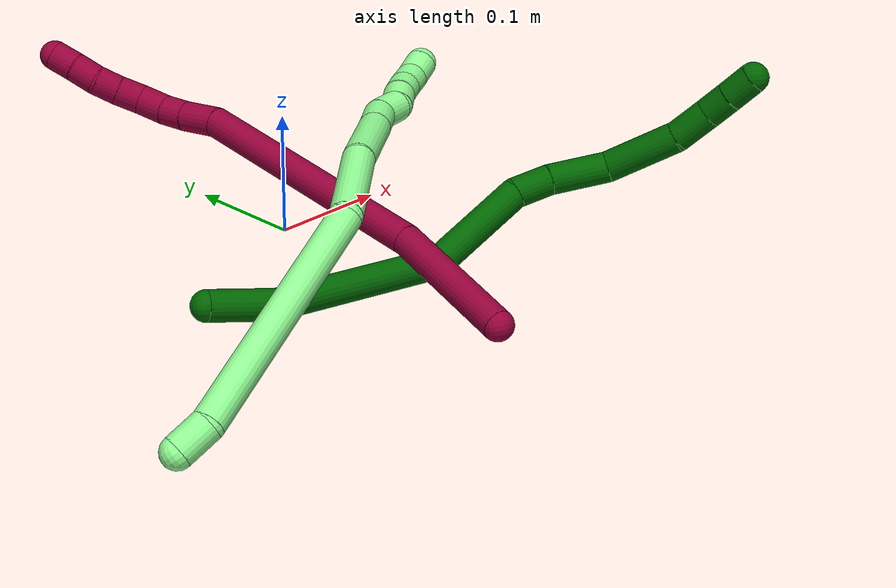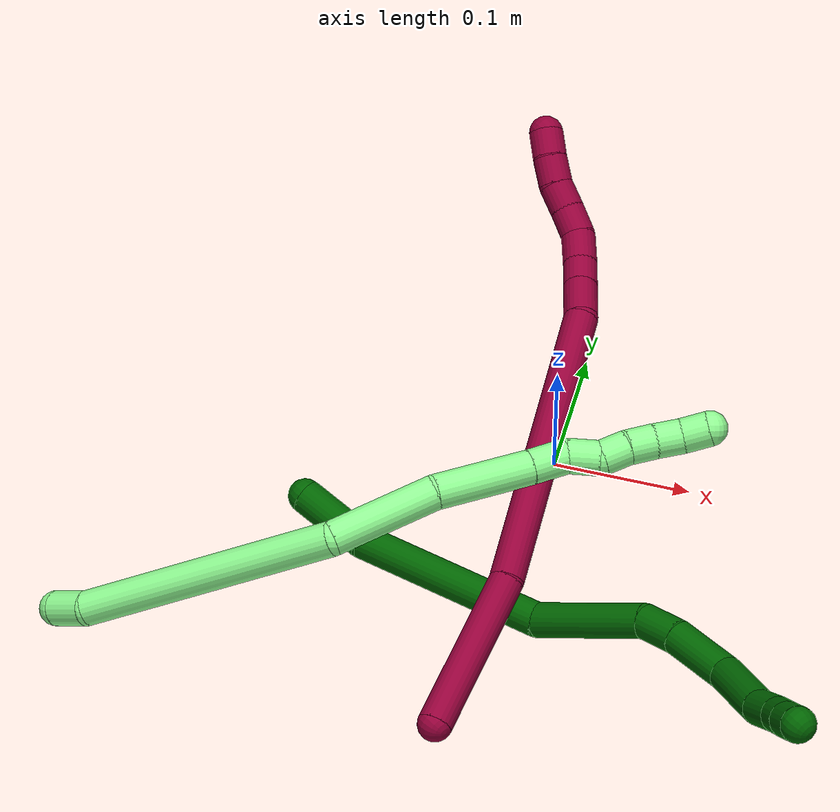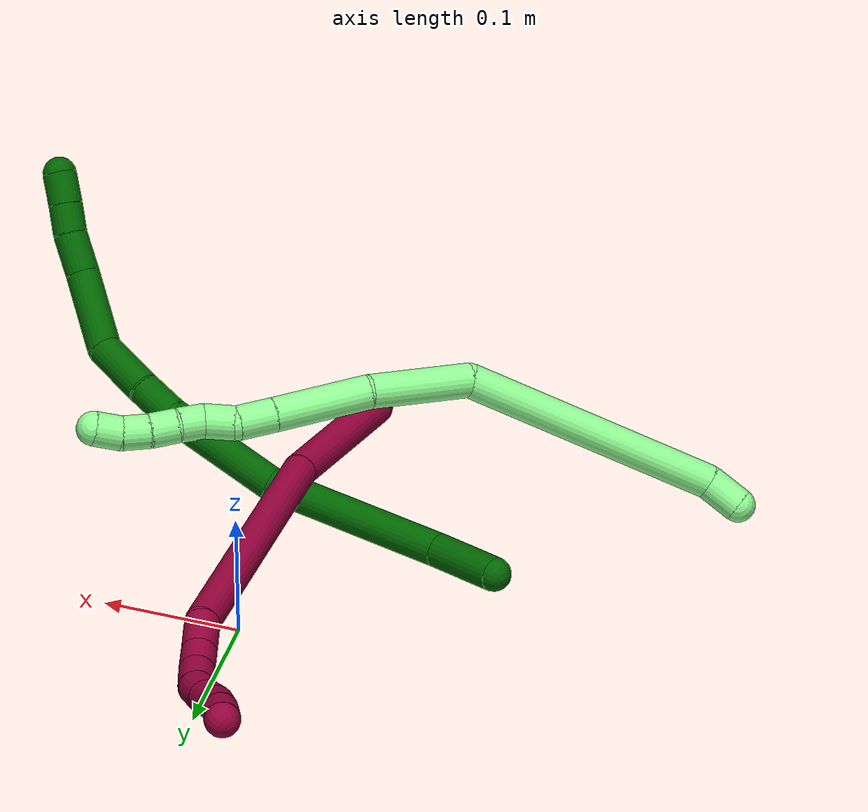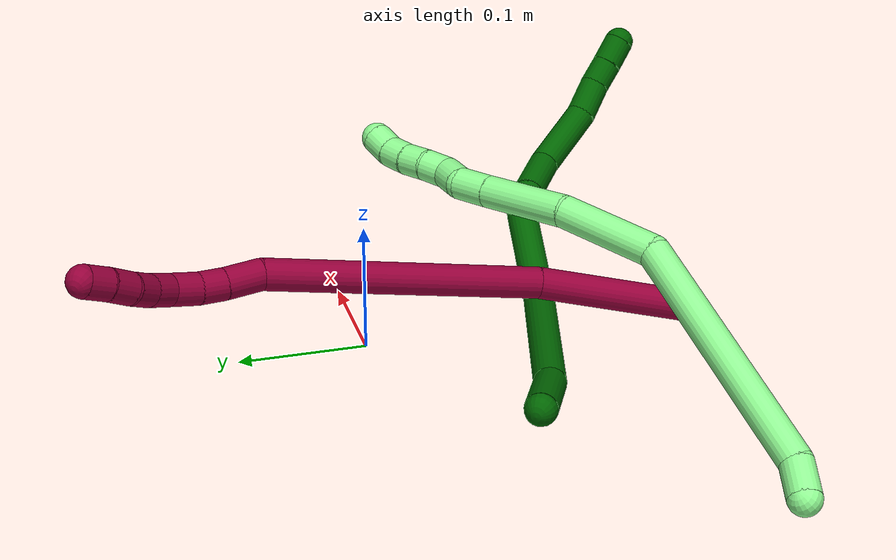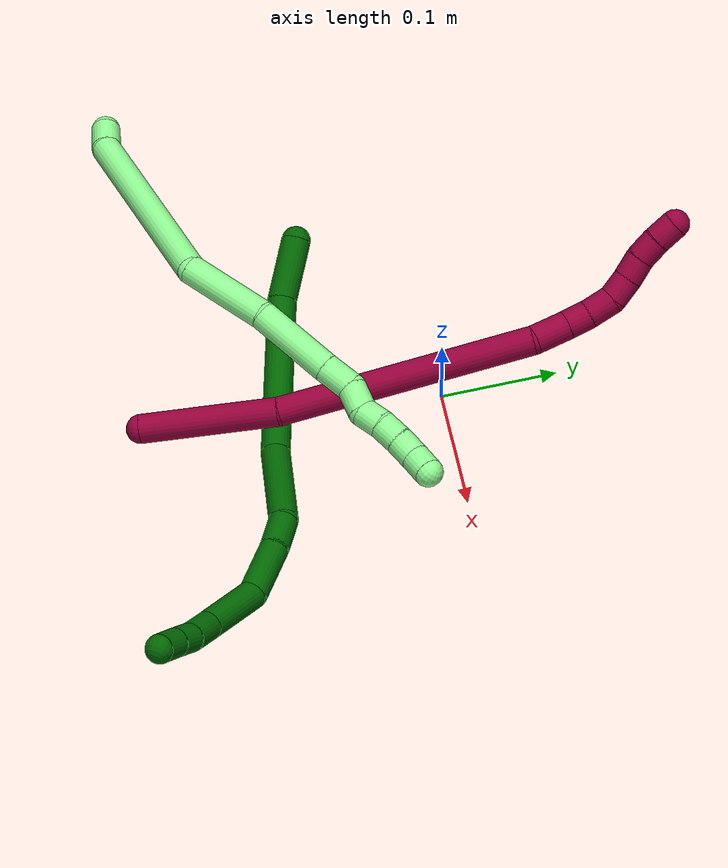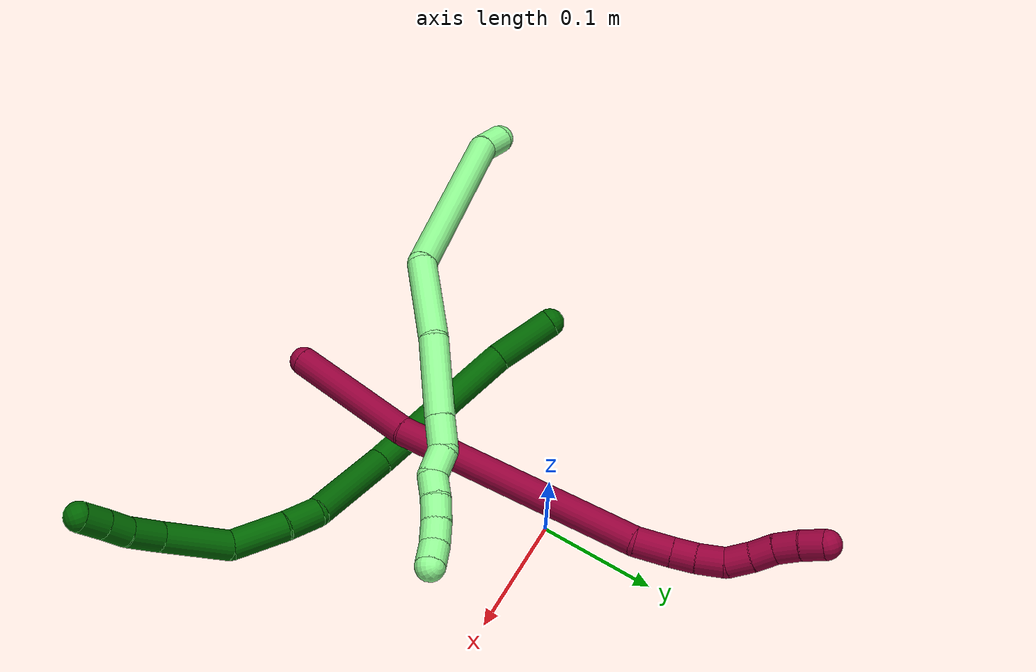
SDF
<sdf version="1.7">
 <world name="default">
  <model name="6">
   <static>0</static>
   <link name="6">
    <collision name="collision-cylinder-e_1_1_4">
     <pose>0.000541 -0.006831 0.026379 0.253406 0.019837 0.002527</pose>
     <geometry><cylinder><radius>0.0125</radius><length>0.054508</length></cylinder></geometry>
     <surface>
      <friction><ode><mu>1.16</mu><mu2>1.16</mu2><slip1>0</slip1><slip2>0</slip2></ode></friction>
      <contact><ode><kp>1e+06</kp><kd>1</kd><max_vel>0</max_vel><min_depth>0.001</min_depth></ode></contact>
     </surface>
    </collision>
    <visual name="visual-cylinder-e_1_1_4">
     <pose>0.000541 -0.006831 0.026379 0.253406 0.019837 0.002527</pose>
     <geometry><cylinder><radius>0.0125</radius><length>0.054508</length></cylinder></geometry>
     <material><ambient>0 0.392157 0.003922 1</ambient></material>
    </visual>
    <collision name="collision-cylinder-e_2_4_5">
     <pose>0.019101 -0.031866 0.118741 0.269172 0.257416 0.035045</pose>
     <geometry><cylinder><radius>0.0125</radius><length>0.141562</length></cylinder></geometry>
     <surface>
      <friction><ode><mu>1.16</mu><mu2>1.16</mu2><slip1>0</slip1><slip2>0</slip2></ode></friction>
      <contact><ode><kp>1e+06</kp><kd>1</kd><max_vel>0</max_vel><min_depth>0.001</min_depth></ode></contact>
     </surface>
    </collision>
    <visual name="visual-cylinder-e_2_4_5">
     <pose>0.019101 -0.031866 0.118741 0.269172 0.257416 0.035045</pose>
     <geometry><cylinder><radius>0.0125</radius><length>0.141562</length></cylinder></geometry>
     <material><ambient>0 0.392157 0.003922 1</ambient></material>
    </visual>
    <collision name="collision-cylinder-e_3_5_6">
     <pose>0.063339 -0.048951 0.219802 -0.03184 0.641637 -0.010581</pose>
     <geometry><cylinder><radius>0.0125</radius><length>0.087613</length></cylinder></geometry>
     <surface>
      <friction><ode><mu>1.16</mu><mu2>1.16</mu2><slip1>0</slip1><slip2>0</slip2></ode></friction>
      <contact><ode><kp>1e+06</kp><kd>1</kd><max_vel>0</max_vel><min_depth>0.001</min_depth></ode></contact>
     </surface>
    </collision>
    <visual name="visual-cylinder-e_3_5_6">
     <pose>0.063339 -0.048951 0.219802 -0.03184 0.641637 -0.010581</pose>
     <geometry><cylinder><radius>0.0125</radius><length>0.087613</length></cylinder></geometry>
     <material><ambient>0 0.392157 0.003922 1</ambient></material>
    </visual>
    <collision name="collision-cylinder-e_4_6_7">
     <pose>0.093473 -0.046628 0.269361 -0.08305 0.263188 -0.010999</pose>
     <geometry><cylinder><radius>0.0125</radius><length>0.030104</length></cylinder></geometry>
     <surface>
      <friction><ode><mu>1.16</mu><mu2>1.16</mu2><slip1>0</slip1><slip2>0</slip2></ode></friction>
      <contact><ode><kp>1e+06</kp><kd>1</kd><max_vel>0</max_vel><min_depth>0.001</min_depth></ode></contact>
     </surface>
    </collision>
    <visual name="visual-cylinder-e_4_6_7">
     <pose>0.093473 -0.046628 0.269361 -0.08305 0.263188 -0.010999</pose>
     <geometry><cylinder><radius>0.0125</radius><length>0.030104</length></cylinder></geometry>
     <material><ambient>0 0.392157 0.003922 1</ambient></material>
    </visual>
    <collision name="collision-cylinder-e_5_7_8">
     <pose>0.099841 -0.04364 0.307756 -0.074426 0.101899 -0.003797</pose>
     <geometry><cylinder><radius>0.0125</radius><length>0.048205</length></cylinder></geometry>
     <surface>
      <friction><ode><mu>1.16</mu><mu2>1.16</mu2><slip1>0</slip1><slip2>0</slip2></ode></friction>
      <contact><ode><kp>1e+06</kp><kd>1</kd><max_vel>0</max_vel><min_depth>0.001</min_depth></ode></contact>
     </surface>
    </collision>
    <visual name="visual-cylinder-e_5_7_8">
     <pose>0.099841 -0.04364 0.307756 -0.074426 0.101899 -0.003797</pose>
     <geometry><cylinder><radius>0.0125</radius><length>0.048205</length></cylinder></geometry>
     <material><ambient>0 0.392157 0.003922 1</ambient></material>
    </visual>
    <collision name="collision-cylinder-e_6_8_9">
     <pose>0.105231 -0.025654 0.357313 -0.563467 0.096545 -0.027963</pose>
     <geometry><cylinder><radius>0.0125</radius><length>0.060956</length></cylinder></geometry>
     <surface>
      <friction><ode><mu>1.16</mu><mu2>1.16</mu2><slip1>0</slip1><slip2>0</slip2></ode></friction>
      <contact><ode><kp>1e+06</kp><kd>1</kd><max_vel>0</max_vel><min_depth>0.001</min_depth></ode></contact>
     </surface>
    </collision>
    <visual name="visual-cylinder-e_6_8_9">
     <pose>0.105231 -0.025654 0.357313 -0.563467 0.096545 -0.027963</pose>
     <geometry><cylinder><radius>0.0125</radius><length>0.060956</length></cylinder></geometry>
     <material><ambient>0 0.392157 0.003922 1</ambient></material>
    </visual>
    <collision name="collision-cylinder-e_7_9_10">
     <pose>0.112846 -0.000194 0.394655 -0.669508 0.303886 -0.106426</pose>
     <geometry><cylinder><radius>0.0125</radius><length>0.031264</length></cylinder></geometry>
     <surface>
      <friction><ode><mu>1.16</mu><mu2>1.16</mu2><slip1>0</slip1><slip2>0</slip2></ode></friction>
      <contact><ode><kp>1e+06</kp><kd>1</kd><max_vel>0</max_vel><min_depth>0.001</min_depth></ode></contact>
     </surface>
    </collision>
    <visual name="visual-cylinder-e_7_9_10">
     <pose>0.112846 -0.000194 0.394655 -0.669508 0.303886 -0.106426</pose>
     <geometry><cylinder><radius>0.0125</radius><length>0.031264</length></cylinder></geometry>
     <material><ambient>0 0.392157 0.003922 1</ambient></material>
    </visual>
    <collision name="collision-cylinder-e_8_10_11">
     <pose>0.120128 0.016847 0.413763 -0.809895 0.237695 -0.102278</pose>
     <geometry><cylinder><radius>0.0125</radius><length>0.02212</length></cylinder></geometry>
     <surface>
      <friction><ode><mu>1.16</mu><mu2>1.16</mu2><slip1>0</slip1><slip2>0</slip2></ode></friction>
      <contact><ode><kp>1e+06</kp><kd>1</kd><max_vel>0</max_vel><min_depth>0.001</min_depth></ode></contact>
     </surface>
    </collision>
    <visual name="visual-cylinder-e_8_10_11">
     <pose>0.120128 0.016847 0.413763 -0.809895 0.237695 -0.102278</pose>
     <geometry><cylinder><radius>0.0125</radius><length>0.02212</length></cylinder></geometry>
     <material><ambient>0 0.392157 0.003922 1</ambient></material>
    </visual>
    <collision name="collision-cylinder-e_9_11_2">
     <pose>0.125829 0.032715 0.429245 -0.786264 0.264739 -0.110327</pose>
     <geometry><cylinder><radius>0.0125</radius><length>0.023669</length></cylinder></geometry>
     <surface>
      <friction><ode><mu>1.16</mu><mu2>1.16</mu2><slip1>0</slip1><slip2>0</slip2></ode></friction>
      <contact><ode><kp>1e+06</kp><kd>1</kd><max_vel>0</max_vel><min_depth>0.001</min_depth></ode></contact>
     </surface>
    </collision>
    <visual name="visual-cylinder-e_9_11_2">
     <pose>0.125829 0.032715 0.429245 -0.786264 0.264739 -0.110327</pose>
     <geometry><cylinder><radius>0.0125</radius><length>0.023669</length></cylinder></geometry>
     <material><ambient>0 0.392157 0.003922 1</ambient></material>
    </visual>
    <collision name="collision-sphere-2">
     <pose>0.128925 0.040799 0.437315 0 -0 0</pose>
     <geometry><sphere><radius>0.0125</radius></sphere></geometry>
     <surface>
      <friction><ode><mu>1.16</mu><mu2>1.16</mu2><slip1>0</slip1><slip2>0</slip2></ode></friction>
      <contact><ode><kp>1e+06</kp><kd>1</kd><max_vel>0</max_vel><min_depth>0.001</min_depth></ode></contact>
     </surface>
    </collision>
    <visual name="visual-sphere-2">
     <pose>0.128925 0.040799 0.437315 0 -0 0</pose>
     <geometry><sphere><radius>0.0125</radius></sphere></geometry>
     <material><ambient>0 0.392157 0.003922 1</ambient></material>
    </visual>
    <collision name="collision-sphere-11">
     <pose>0.122732 0.024632 0.421176 0 -0 0</pose>
     <geometry><sphere><radius>0.0125</radius></sphere></geometry>
     <surface>
      <friction><ode><mu>1.16</mu><mu2>1.16</mu2><slip1>0</slip1><slip2>0</slip2></ode></friction>
      <contact><ode><kp>1e+06</kp><kd>1</kd><max_vel>0</max_vel><min_depth>0.001</min_depth></ode></contact>
     </surface>
    </collision>
    <visual name="visual-sphere-11">
     <pose>0.122732 0.024632 0.421176 0 -0 0</pose>
     <geometry><sphere><radius>0.0125</radius></sphere></geometry>
     <material><ambient>0 0.392157 0.003922 1</ambient></material>
    </visual>
    <collision name="collision-sphere-10">
     <pose>0.117524 0.009063 0.406351 0 -0 0</pose>
     <geometry><sphere><radius>0.0125</radius></sphere></geometry>
     <surface>
      <friction><ode><mu>1.16</mu><mu2>1.16</mu2><slip1>0</slip1><slip2>0</slip2></ode></friction>
      <contact><ode><kp>1e+06</kp><kd>1</kd><max_vel>0</max_vel><min_depth>0.001</min_depth></ode></contact>
     </surface>
    </collision>
    <visual name="visual-sphere-10">
     <pose>0.117524 0.009063 0.406351 0 -0 0</pose>
     <geometry><sphere><radius>0.0125</radius></sphere></geometry>
     <material><ambient>0 0.392157 0.003922 1</ambient></material>
    </visual>
    <collision name="collision-sphere-9">
     <pose>0.108169 -0.009451 0.382959 0 -0 0</pose>
     <geometry><sphere><radius>0.0125</radius></sphere></geometry>
     <surface>
      <friction><ode><mu>1.16</mu><mu2>1.16</mu2><slip1>0</slip1><slip2>0</slip2></ode></friction>
      <contact><ode><kp>1e+06</kp><kd>1</kd><max_vel>0</max_vel><min_depth>0.001</min_depth></ode></contact>
     </surface>
    </collision>
    <visual name="visual-sphere-9">
     <pose>0.108169 -0.009451 0.382959 0 -0 0</pose>
     <geometry><sphere><radius>0.0125</radius></sphere></geometry>
     <material><ambient>0 0.392157 0.003922 1</ambient></material>
    </visual>
    <collision name="collision-sphere-4">
     <pose>0.001081 -0.013663 0.052757 0 -0 0</pose>
     <geometry><sphere><radius>0.0125</radius></sphere></geometry>
     <surface>
      <friction><ode><mu>1.16</mu><mu2>1.16</mu2><slip1>0</slip1><slip2>0</slip2></ode></friction>
      <contact><ode><kp>1e+06</kp><kd>1</kd><max_vel>0</max_vel><min_depth>0.001</min_depth></ode></contact>
     </surface>
    </collision>
    <visual name="visual-sphere-4">
     <pose>0.001081 -0.013663 0.052757 0 -0 0</pose>
     <geometry><sphere><radius>0.0125</radius></sphere></geometry>
     <material><ambient>0 0.392157 0.003922 1</ambient></material>
    </visual>
    <collision name="collision-sphere-1">
     <geometry><sphere><radius>0.0125</radius></sphere></geometry>
     <surface>
      <friction><ode><mu>1.16</mu><mu2>1.16</mu2><slip1>0</slip1><slip2>0</slip2></ode></friction>
      <contact><ode><kp>1e+06</kp><kd>1</kd><max_vel>0</max_vel><min_depth>0.001</min_depth></ode></contact>
     </surface>
    </collision>
    <visual name="visual-sphere-1">
     <geometry><sphere><radius>0.0125</radius></sphere></geometry>
     <material><ambient>0 0.392157 0.003922 1</ambient></material>
    </visual>
    <collision name="collision-sphere-8">
     <pose>0.102293 -0.041857 0.331667 0 -0 0</pose>
     <geometry><sphere><radius>0.0125</radius></sphere></geometry>
     <surface>
      <friction><ode><mu>1.16</mu><mu2>1.16</mu2><slip1>0</slip1><slip2>0</slip2></ode></friction>
      <contact><ode><kp>1e+06</kp><kd>1</kd><max_vel>0</max_vel><min_depth>0.001</min_depth></ode></contact>
     </surface>
    </collision>
    <visual name="visual-sphere-8">
     <pose>0.102293 -0.041857 0.331667 0 -0 0</pose>
     <geometry><sphere><radius>0.0125</radius></sphere></geometry>
     <material><ambient>0 0.392157 0.003922 1</ambient></material>
    </visual>
    <collision name="collision-sphere-5">
     <pose>0.03712 -0.050068 0.184725 0 -0 0</pose>
     <geometry><sphere><radius>0.0125</radius></sphere></geometry>
     <surface>
      <friction><ode><mu>1.16</mu><mu2>1.16</mu2><slip1>0</slip1><slip2>0</slip2></ode></friction>
      <contact><ode><kp>1e+06</kp><kd>1</kd><max_vel>0</max_vel><min_depth>0.001</min_depth></ode></contact>
     </surface>
    </collision>
    <visual name="visual-sphere-5">
     <pose>0.03712 -0.050068 0.184725 0 -0 0</pose>
     <geometry><sphere><radius>0.0125</radius></sphere></geometry>
     <material><ambient>0 0.392157 0.003922 1</ambient></material>
    </visual>
    <collision name="collision-sphere-6">
     <pose>0.089557 -0.047834 0.254878 0 -0 0</pose>
     <geometry><sphere><radius>0.0125</radius></sphere></geometry>
     <surface>
      <friction><ode><mu>1.16</mu><mu2>1.16</mu2><slip1>0</slip1><slip2>0</slip2></ode></friction>
      <contact><ode><kp>1e+06</kp><kd>1</kd><max_vel>0</max_vel><min_depth>0.001</min_depth></ode></contact>
     </surface>
    </collision>
    <visual name="visual-sphere-6">
     <pose>0.089557 -0.047834 0.254878 0 -0 0</pose>
     <geometry><sphere><radius>0.0125</radius></sphere></geometry>
     <material><ambient>0 0.392157 0.003922 1</ambient></material>
    </visual>
    <collision name="collision-sphere-7">
     <pose>0.097389 -0.045423 0.283845 0 -0 0</pose>
     <geometry><sphere><radius>0.0125</radius></sphere></geometry>
     <surface>
      <friction><ode><mu>1.16</mu><mu2>1.16</mu2><slip1>0</slip1><slip2>0</slip2></ode></friction>
      <contact><ode><kp>1e+06</kp><kd>1</kd><max_vel>0</max_vel><min_depth>0.001</min_depth></ode></contact>
     </surface>
    </collision>
    <visual name="visual-sphere-7">
     <pose>0.097389 -0.045423 0.283845 0 -0 0</pose>
     <geometry><sphere><radius>0.0125</radius></sphere></geometry>
     <material><ambient>0 0.392157 0.003922 1</ambient></material>
    </visual>
    <inertial>
     <pose>0.062975 -0.026204 0.227759 0 -0 0</pose>
     <mass>0.5</mass>
     <inertia>
      <ixx>0.000356</ixx>
      <ixy>0</ixy>
      <ixz>0</ixz>
      <iyy>0.000356</iyy>
      <iyz>0</iyz>
      <izz>-2.2e-05</izz>
     </inertia>
    </inertial>
   </link>
   <pose>-0.161419 -0.089891 0.020055 1.53571 -0.722678 0.968376</pose>
  </model>
  <model name="8">
   <static>0</static>
   <link name="8">
    <collision name="collision-cylinder-e_1_1_4">
     <pose>-0.004984 0.054041 -0.024806 -2.00113 -0.083623 0.130287</pose>
     <geometry><cylinder><radius>0.0125</radius><length>0.119342</length></cylinder></geometry>
     <surface>
      <friction><ode><mu>1.16</mu><mu2>1.16</mu2><slip1>0</slip1><slip2>0</slip2></ode></friction>
      <contact><ode><kp>1e+06</kp><kd>1</kd><max_vel>0</max_vel><min_depth>0.001</min_depth></ode></contact>
     </surface>
    </collision>
    <visual name="visual-cylinder-e_1_1_4">
     <pose>-0.004984 0.054041 -0.024806 -2.00113 -0.083623 0.130287</pose>
     <geometry><cylinder><radius>0.0125</radius><length>0.119342</length></cylinder></geometry>
     <material><ambient>0.584314 0 0.227451 1</ambient></material>
    </visual>
    <collision name="collision-cylinder-e_2_4_5">
     <pose>-0.018973 0.198226 -0.113908 -2.19036 -0.081152 0.157322</pose>
     <geometry><cylinder><radius>0.0125</radius><length>0.222179</length></cylinder></geometry>
     <surface>
      <friction><ode><mu>1.16</mu><mu2>1.16</mu2><slip1>0</slip1><slip2>0</slip2></ode></friction>
      <contact><ode><kp>1e+06</kp><kd>1</kd><max_vel>0</max_vel><min_depth>0.001</min_depth></ode></contact>
     </surface>
    </collision>
    <visual name="visual-cylinder-e_2_4_5">
     <pose>-0.018973 0.198226 -0.113908 -2.19036 -0.081152 0.157322</pose>
     <geometry><cylinder><radius>0.0125</radius><length>0.222179</length></cylinder></geometry>
     <material><ambient>0.584314 0 0.227451 1</ambient></material>
    </visual>
    <collision name="collision-cylinder-e_3_5_6">
     <pose>-0.027368 0.297838 -0.190246 -2.47535 0.039833 -0.115009</pose>
     <geometry><cylinder><radius>0.0125</radius><length>0.030662</length></cylinder></geometry>
     <surface>
      <friction><ode><mu>1.16</mu><mu2>1.16</mu2><slip1>0</slip1><slip2>0</slip2></ode></friction>
      <contact><ode><kp>1e+06</kp><kd>1</kd><max_vel>0</max_vel><min_depth>0.001</min_depth></ode></contact>
     </surface>
    </collision>
    <visual name="visual-cylinder-e_3_5_6">
     <pose>-0.027368 0.297838 -0.190246 -2.47535 0.039833 -0.115009</pose>
     <geometry><cylinder><radius>0.0125</radius><length>0.030662</length></cylinder></geometry>
     <material><ambient>0.584314 0 0.227451 1</ambient></material>
    </visual>
    <collision name="collision-cylinder-e_4_6_7">
     <pose>-0.027254 0.31389 -0.210313 -2.45437 -0.04777 0.133337</pose>
     <geometry><cylinder><radius>0.0125</radius><length>0.020783</length></cylinder></geometry>
     <surface>
      <friction><ode><mu>1.16</mu><mu2>1.16</mu2><slip1>0</slip1><slip2>0</slip2></ode></friction>
      <contact><ode><kp>1e+06</kp><kd>1</kd><max_vel>0</max_vel><min_depth>0.001</min_depth></ode></contact>
     </surface>
    </collision>
    <visual name="visual-cylinder-e_4_6_7">
     <pose>-0.027254 0.31389 -0.210313 -2.45437 -0.04777 0.133337</pose>
     <geometry><cylinder><radius>0.0125</radius><length>0.020783</length></cylinder></geometry>
     <material><ambient>0.584314 0 0.227451 1</ambient></material>
    </visual>
    <collision name="collision-cylinder-e_5_7_8">
     <pose>-0.030224 0.327828 -0.227484 -2.4645 -0.207805 0.575855</pose>
     <geometry><cylinder><radius>0.0125</radius><length>0.023988</length></cylinder></geometry>
     <surface>
      <friction><ode><mu>1.16</mu><mu2>1.16</mu2><slip1>0</slip1><slip2>0</slip2></ode></friction>
      <contact><ode><kp>1e+06</kp><kd>1</kd><max_vel>0</max_vel><min_depth>0.001</min_depth></ode></contact>
     </surface>
    </collision>
    <visual name="visual-cylinder-e_5_7_8">
     <pose>-0.030224 0.327828 -0.227484 -2.4645 -0.207805 0.575855</pose>
     <geometry><cylinder><radius>0.0125</radius><length>0.023988</length></cylinder></geometry>
     <material><ambient>0.584314 0 0.227451 1</ambient></material>
    </visual>
    <collision name="collision-cylinder-e_6_8_9">
     <pose>-0.037205 0.338741 -0.245798 -2.77118 -0.429676 1.72264</pose>
     <geometry><cylinder><radius>0.0125</radius><length>0.021634</length></cylinder></geometry>
     <surface>
      <friction><ode><mu>1.16</mu><mu2>1.16</mu2><slip1>0</slip1><slip2>0</slip2></ode></friction>
      <contact><ode><kp>1e+06</kp><kd>1</kd><max_vel>0</max_vel><min_depth>0.001</min_depth></ode></contact>
     </surface>
    </collision>
    <visual name="visual-cylinder-e_6_8_9">
     <pose>-0.037205 0.338741 -0.245798 -2.77118 -0.429676 1.72264</pose>
     <geometry><cylinder><radius>0.0125</radius><length>0.021634</length></cylinder></geometry>
     <material><ambient>0.584314 0 0.227451 1</ambient></material>
    </visual>
    <collision name="collision-cylinder-e_7_9_10">
     <pose>-0.047008 0.345044 -0.263118 -2.81709 -0.551871 2.09329</pose>
     <geometry><cylinder><radius>0.0125</radius><length>0.020205</length></cylinder></geometry>
     <surface>
      <friction><ode><mu>1.16</mu><mu2>1.16</mu2><slip1>0</slip1><slip2>0</slip2></ode></friction>
      <contact><ode><kp>1e+06</kp><kd>1</kd><max_vel>0</max_vel><min_depth>0.001</min_depth></ode></contact>
     </surface>
    </collision>
    <visual name="visual-cylinder-e_7_9_10">
     <pose>-0.047008 0.345044 -0.263118 -2.81709 -0.551871 2.09329</pose>
     <geometry><cylinder><radius>0.0125</radius><length>0.020205</length></cylinder></geometry>
     <material><ambient>0.584314 0 0.227451 1</ambient></material>
    </visual>
    <collision name="collision-cylinder-e_8_10_11">
     <pose>-0.057427 0.352691 -0.278923 -2.57158 -0.51332 1.46097</pose>
     <geometry><cylinder><radius>0.0125</radius><length>0.020863</length></cylinder></geometry>
     <surface>
      <friction><ode><mu>1.16</mu><mu2>1.16</mu2><slip1>0</slip1><slip2>0</slip2></ode></friction>
      <contact><ode><kp>1e+06</kp><kd>1</kd><max_vel>0</max_vel><min_depth>0.001</min_depth></ode></contact>
     </surface>
    </collision>
    <visual name="visual-cylinder-e_8_10_11">
     <pose>-0.057427 0.352691 -0.278923 -2.57158 -0.51332 1.46097</pose>
     <geometry><cylinder><radius>0.0125</radius><length>0.020863</length></cylinder></geometry>
     <material><ambient>0.584314 0 0.227451 1</ambient></material>
    </visual>
    <collision name="collision-cylinder-e_9_11_2">
     <pose>-0.066631 0.363082 -0.294101 -2.51168 -0.412917 1.14268</pose>
     <geometry><cylinder><radius>0.0125</radius><length>0.020342</length></cylinder></geometry>
     <surface>
      <friction><ode><mu>1.16</mu><mu2>1.16</mu2><slip1>0</slip1><slip2>0</slip2></ode></friction>
      <contact><ode><kp>1e+06</kp><kd>1</kd><max_vel>0</max_vel><min_depth>0.001</min_depth></ode></contact>
     </surface>
    </collision>
    <visual name="visual-cylinder-e_9_11_2">
     <pose>-0.066631 0.363082 -0.294101 -2.51168 -0.412917 1.14268</pose>
     <geometry><cylinder><radius>0.0125</radius><length>0.020342</length></cylinder></geometry>
     <material><ambient>0.584314 0 0.227451 1</ambient></material>
    </visual>
    <collision name="collision-sphere-2">
     <pose>-0.070713 0.36857 -0.301629 0 -0 0</pose>
     <geometry><sphere><radius>0.0125</radius></sphere></geometry>
     <surface>
      <friction><ode><mu>1.16</mu><mu2>1.16</mu2><slip1>0</slip1><slip2>0</slip2></ode></friction>
      <contact><ode><kp>1e+06</kp><kd>1</kd><max_vel>0</max_vel><min_depth>0.001</min_depth></ode></contact>
     </surface>
    </collision>
    <visual name="visual-sphere-2">
     <pose>-0.070713 0.36857 -0.301629 0 -0 0</pose>
     <geometry><sphere><radius>0.0125</radius></sphere></geometry>
     <material><ambient>0.584314 0 0.227451 1</ambient></material>
    </visual>
    <collision name="collision-sphere-11">
     <pose>-0.06255 0.357594 -0.286573 0 -0 0</pose>
     <geometry><sphere><radius>0.0125</radius></sphere></geometry>
     <surface>
      <friction><ode><mu>1.16</mu><mu2>1.16</mu2><slip1>0</slip1><slip2>0</slip2></ode></friction>
      <contact><ode><kp>1e+06</kp><kd>1</kd><max_vel>0</max_vel><min_depth>0.001</min_depth></ode></contact>
     </surface>
    </collision>
    <visual name="visual-sphere-11">
     <pose>-0.06255 0.357594 -0.286573 0 -0 0</pose>
     <geometry><sphere><radius>0.0125</radius></sphere></geometry>
     <material><ambient>0.584314 0 0.227451 1</ambient></material>
    </visual>
    <collision name="collision-sphere-10">
     <pose>-0.052304 0.347787 -0.271272 0 -0 0</pose>
     <geometry><sphere><radius>0.0125</radius></sphere></geometry>
     <surface>
      <friction><ode><mu>1.16</mu><mu2>1.16</mu2><slip1>0</slip1><slip2>0</slip2></ode></friction>
      <contact><ode><kp>1e+06</kp><kd>1</kd><max_vel>0</max_vel><min_depth>0.001</min_depth></ode></contact>
     </surface>
    </collision>
    <visual name="visual-sphere-10">
     <pose>-0.052304 0.347787 -0.271272 0 -0 0</pose>
     <geometry><sphere><radius>0.0125</radius></sphere></geometry>
     <material><ambient>0.584314 0 0.227451 1</ambient></material>
    </visual>
    <collision name="collision-sphere-9">
     <pose>-0.041711 0.342301 -0.254965 0 -0 0</pose>
     <geometry><sphere><radius>0.0125</radius></sphere></geometry>
     <surface>
      <friction><ode><mu>1.16</mu><mu2>1.16</mu2><slip1>0</slip1><slip2>0</slip2></ode></friction>
      <contact><ode><kp>1e+06</kp><kd>1</kd><max_vel>0</max_vel><min_depth>0.001</min_depth></ode></contact>
     </surface>
    </collision>
    <visual name="visual-sphere-9">
     <pose>-0.041711 0.342301 -0.254965 0 -0 0</pose>
     <geometry><sphere><radius>0.0125</radius></sphere></geometry>
     <material><ambient>0.584314 0 0.227451 1</ambient></material>
    </visual>
    <collision name="collision-sphere-4">
     <pose>-0.009968 0.108083 -0.049612 0 -0 0</pose>
     <geometry><sphere><radius>0.0125</radius></sphere></geometry>
     <surface>
      <friction><ode><mu>1.16</mu><mu2>1.16</mu2><slip1>0</slip1><slip2>0</slip2></ode></friction>
      <contact><ode><kp>1e+06</kp><kd>1</kd><max_vel>0</max_vel><min_depth>0.001</min_depth></ode></contact>
     </surface>
    </collision>
    <visual name="visual-sphere-4">
     <pose>-0.009968 0.108083 -0.049612 0 -0 0</pose>
     <geometry><sphere><radius>0.0125</radius></sphere></geometry>
     <material><ambient>0.584314 0 0.227451 1</ambient></material>
    </visual>
    <collision name="collision-sphere-1">
     <geometry><sphere><radius>0.0125</radius></sphere></geometry>
     <surface>
      <friction><ode><mu>1.16</mu><mu2>1.16</mu2><slip1>0</slip1><slip2>0</slip2></ode></friction>
      <contact><ode><kp>1e+06</kp><kd>1</kd><max_vel>0</max_vel><min_depth>0.001</min_depth></ode></contact>
     </surface>
    </collision>
    <visual name="visual-sphere-1">
     <geometry><sphere><radius>0.0125</radius></sphere></geometry>
     <material><ambient>0.584314 0 0.227451 1</ambient></material>
    </visual>
    <collision name="collision-sphere-8">
     <pose>-0.032699 0.335181 -0.236631 0 -0 0</pose>
     <geometry><sphere><radius>0.0125</radius></sphere></geometry>
     <surface>
      <friction><ode><mu>1.16</mu><mu2>1.16</mu2><slip1>0</slip1><slip2>0</slip2></ode></friction>
      <contact><ode><kp>1e+06</kp><kd>1</kd><max_vel>0</max_vel><min_depth>0.001</min_depth></ode></contact>
     </surface>
    </collision>
    <visual name="visual-sphere-8">
     <pose>-0.032699 0.335181 -0.236631 0 -0 0</pose>
     <geometry><sphere><radius>0.0125</radius></sphere></geometry>
     <material><ambient>0.584314 0 0.227451 1</ambient></material>
    </visual>
    <collision name="collision-sphere-5">
     <pose>-0.027979 0.28837 -0.178203 0 -0 0</pose>
     <geometry><sphere><radius>0.0125</radius></sphere></geometry>
     <surface>
      <friction><ode><mu>1.16</mu><mu2>1.16</mu2><slip1>0</slip1><slip2>0</slip2></ode></friction>
      <contact><ode><kp>1e+06</kp><kd>1</kd><max_vel>0</max_vel><min_depth>0.001</min_depth></ode></contact>
     </surface>
    </collision>
    <visual name="visual-sphere-5">
     <pose>-0.027979 0.28837 -0.178203 0 -0 0</pose>
     <geometry><sphere><radius>0.0125</radius></sphere></geometry>
     <material><ambient>0.584314 0 0.227451 1</ambient></material>
    </visual>
    <collision name="collision-sphere-6">
     <pose>-0.026757 0.307305 -0.202289 0 -0 0</pose>
     <geometry><sphere><radius>0.0125</radius></sphere></geometry>
     <surface>
      <friction><ode><mu>1.16</mu><mu2>1.16</mu2><slip1>0</slip1><slip2>0</slip2></ode></friction>
      <contact><ode><kp>1e+06</kp><kd>1</kd><max_vel>0</max_vel><min_depth>0.001</min_depth></ode></contact>
     </surface>
    </collision>
    <visual name="visual-sphere-6">
     <pose>-0.026757 0.307305 -0.202289 0 -0 0</pose>
     <geometry><sphere><radius>0.0125</radius></sphere></geometry>
     <material><ambient>0.584314 0 0.227451 1</ambient></material>
    </visual>
    <collision name="collision-sphere-7">
     <pose>-0.02775 0.320475 -0.218337 0 -0 0</pose>
     <geometry><sphere><radius>0.0125</radius></sphere></geometry>
     <surface>
      <friction><ode><mu>1.16</mu><mu2>1.16</mu2><slip1>0</slip1><slip2>0</slip2></ode></friction>
      <contact><ode><kp>1e+06</kp><kd>1</kd><max_vel>0</max_vel><min_depth>0.001</min_depth></ode></contact>
     </surface>
    </collision>
    <visual name="visual-sphere-7">
     <pose>-0.02775 0.320475 -0.218337 0 -0 0</pose>
     <geometry><sphere><radius>0.0125</radius></sphere></geometry>
     <material><ambient>0.584314 0 0.227451 1</ambient></material>
    </visual>
    <inertial>
     <pose>-0.022498 0.206111 -0.132731 0 -0 0</pose>
     <mass>0.5</mass>
     <inertia>
      <ixx>0.001223</ixx>
      <ixy>0</ixy>
      <ixz>0</ixz>
      <iyy>-0.000384</iyy>
      <iyz>0</iyz>
      <izz>-0.000822</izz>
     </inertia>
    </inertial>
   </link>
   <pose>-0.022006 -0.254771 0.012837 0.949087 1.31543 0.303195</pose>
  </model>
  <model name="13">
   <static>0</static>
   <link name="13">
    <collision name="collision-cylinder-e_1_1_4">
     <pose>0.013373 -0.002465 0.001975 0.895379 1.33886 0.7263</pose>
     <geometry><cylinder><radius>0.0125</radius><length>0.027482</length></cylinder></geometry>
     <surface>
      <friction><ode><mu>1.16</mu><mu2>1.16</mu2><slip1>0</slip1><slip2>0</slip2></ode></friction>
      <contact><ode><kp>1e+06</kp><kd>1</kd><max_vel>0</max_vel><min_depth>0.001</min_depth></ode></contact>
     </surface>
    </collision>
    <visual name="visual-cylinder-e_1_1_4">
     <pose>0.013373 -0.002465 0.001975 0.895379 1.33886 0.7263</pose>
     <geometry><cylinder><radius>0.0125</radius><length>0.027482</length></cylinder></geometry>
     <material><ambient>0.564706 0.984314 0.572549 1</ambient></material>
    </visual>
    <collision name="collision-cylinder-e_2_4_5">
     <pose>0.116623 0.006516 0.036618 -0.33699 1.20316 -0.232492</pose>
     <geometry><cylinder><radius>0.0125</radius><length>0.192625</length></cylinder></geometry>
     <surface>
      <friction><ode><mu>1.16</mu><mu2>1.16</mu2><slip1>0</slip1><slip2>0</slip2></ode></friction>
      <contact><ode><kp>1e+06</kp><kd>1</kd><max_vel>0</max_vel><min_depth>0.001</min_depth></ode></contact>
     </surface>
    </collision>
    <visual name="visual-cylinder-e_2_4_5">
     <pose>0.116623 0.006516 0.036618 -0.33699 1.20316 -0.232492</pose>
     <geometry><cylinder><radius>0.0125</radius><length>0.192625</length></cylinder></geometry>
     <material><ambient>0.564706 0.984314 0.572549 1</ambient></material>
    </visual>
    <collision name="collision-cylinder-e_3_5_6">
     <pose>0.234272 0.04039 0.08457 -0.972647 0.796887 -0.437965</pose>
     <geometry><cylinder><radius>0.0125</radius><length>0.077664</length></cylinder></geometry>
     <surface>
      <friction><ode><mu>1.16</mu><mu2>1.16</mu2><slip1>0</slip1><slip2>0</slip2></ode></friction>
      <contact><ode><kp>1e+06</kp><kd>1</kd><max_vel>0</max_vel><min_depth>0.001</min_depth></ode></contact>
     </surface>
    </collision>
    <visual name="visual-cylinder-e_3_5_6">
     <pose>0.234272 0.04039 0.08457 -0.972647 0.796887 -0.437965</pose>
     <geometry><cylinder><radius>0.0125</radius><length>0.077664</length></cylinder></geometry>
     <material><ambient>0.564706 0.984314 0.572549 1</ambient></material>
    </visual>
    <collision name="collision-cylinder-e_4_6_7">
     <pose>0.28708 0.086611 0.107372 -1.26473 0.787083 -0.590675</pose>
     <geometry><cylinder><radius>0.0125</radius><length>0.070691</length></cylinder></geometry>
     <surface>
      <friction><ode><mu>1.16</mu><mu2>1.16</mu2><slip1>0</slip1><slip2>0</slip2></ode></friction>
      <contact><ode><kp>1e+06</kp><kd>1</kd><max_vel>0</max_vel><min_depth>0.001</min_depth></ode></contact>
     </surface>
    </collision>
    <visual name="visual-cylinder-e_4_6_7">
     <pose>0.28708 0.086611 0.107372 -1.26473 0.787083 -0.590675</pose>
     <geometry><cylinder><radius>0.0125</radius><length>0.070691</length></cylinder></geometry>
     <material><ambient>0.564706 0.984314 0.572549 1</ambient></material>
    </visual>
    <collision name="collision-cylinder-e_5_7_8">
     <pose>0.321762 0.119548 0.118426 -1.20186 0.777258 -0.547283</pose>
     <geometry><cylinder><radius>0.0125</radius><length>0.027512</length></cylinder></geometry>
     <surface>
      <friction><ode><mu>1.16</mu><mu2>1.16</mu2><slip1>0</slip1><slip2>0</slip2></ode></friction>
      <contact><ode><kp>1e+06</kp><kd>1</kd><max_vel>0</max_vel><min_depth>0.001</min_depth></ode></contact>
     </surface>
    </collision>
    <visual name="visual-cylinder-e_5_7_8">
     <pose>0.321762 0.119548 0.118426 -1.20186 0.777258 -0.547283</pose>
     <geometry><cylinder><radius>0.0125</radius><length>0.027512</length></cylinder></geometry>
     <material><ambient>0.564706 0.984314 0.572549 1</ambient></material>
    </visual>
    <collision name="collision-cylinder-e_6_8_9">
     <pose>0.342339 0.133225 0.121509 -1.67059 1.17601 -1.26994</pose>
     <geometry><cylinder><radius>0.0125</radius><length>0.023681</length></cylinder></geometry>
     <surface>
      <friction><ode><mu>1.16</mu><mu2>1.16</mu2><slip1>0</slip1><slip2>0</slip2></ode></friction>
      <contact><ode><kp>1e+06</kp><kd>1</kd><max_vel>0</max_vel><min_depth>0.001</min_depth></ode></contact>
     </surface>
    </collision>
    <visual name="visual-cylinder-e_6_8_9">
     <pose>0.342339 0.133225 0.121509 -1.67059 1.17601 -1.26994</pose>
     <geometry><cylinder><radius>0.0125</radius><length>0.023681</length></cylinder></geometry>
     <material><ambient>0.564706 0.984314 0.572549 1</ambient></material>
    </visual>
    <collision name="collision-cylinder-e_7_9_10">
     <pose>0.36034 0.143974 0.124542 -1.0597 0.781369 -0.473418</pose>
     <geometry><cylinder><radius>0.0125</radius><length>0.020082</length></cylinder></geometry>
     <surface>
      <friction><ode><mu>1.16</mu><mu2>1.16</mu2><slip1>0</slip1><slip2>0</slip2></ode></friction>
      <contact><ode><kp>1e+06</kp><kd>1</kd><max_vel>0</max_vel><min_depth>0.001</min_depth></ode></contact>
     </surface>
    </collision>
    <visual name="visual-cylinder-e_7_9_10">
     <pose>0.36034 0.143974 0.124542 -1.0597 0.781369 -0.473418</pose>
     <geometry><cylinder><radius>0.0125</radius><length>0.020082</length></cylinder></geometry>
     <material><ambient>0.564706 0.984314 0.572549 1</ambient></material>
    </visual>
    <collision name="collision-cylinder-e_8_10_11">
     <pose>0.37483 0.15665 0.12998 -1.27734 0.832735 -0.6345</pose>
     <geometry><cylinder><radius>0.0125</radius><length>0.020055</length></cylinder></geometry>
     <surface>
      <friction><ode><mu>1.16</mu><mu2>1.16</mu2><slip1>0</slip1><slip2>0</slip2></ode></friction>
      <contact><ode><kp>1e+06</kp><kd>1</kd><max_vel>0</max_vel><min_depth>0.001</min_depth></ode></contact>
     </surface>
    </collision>
    <visual name="visual-cylinder-e_8_10_11">
     <pose>0.37483 0.15665 0.12998 -1.27734 0.832735 -0.6345</pose>
     <geometry><cylinder><radius>0.0125</radius><length>0.020055</length></cylinder></geometry>
     <material><ambient>0.564706 0.984314 0.572549 1</ambient></material>
    </visual>
    <collision name="collision-cylinder-e_9_11_12">
     <pose>0.390433 0.168629 0.133782 -1.24732 0.952494 -0.710744</pose>
     <geometry><cylinder><radius>0.0125</radius><length>0.020089</length></cylinder></geometry>
     <surface>
      <friction><ode><mu>1.16</mu><mu2>1.16</mu2><slip1>0</slip1><slip2>0</slip2></ode></friction>
      <contact><ode><kp>1e+06</kp><kd>1</kd><max_vel>0</max_vel><min_depth>0.001</min_depth></ode></contact>
     </surface>
    </collision>
    <visual name="visual-cylinder-e_9_11_12">
     <pose>0.390433 0.168629 0.133782 -1.24732 0.952494 -0.710744</pose>
     <geometry><cylinder><radius>0.0125</radius><length>0.020089</length></cylinder></geometry>
     <material><ambient>0.564706 0.984314 0.572549 1</ambient></material>
    </visual>
    <collision name="collision-cylinder-e_10_12_2">
     <pose>0.407609 0.177487 0.138667 -0.832982 1.10583 -0.533009</pose>
     <geometry><cylinder><radius>0.0125</radius><length>0.020119</length></cylinder></geometry>
     <surface>
      <friction><ode><mu>1.16</mu><mu2>1.16</mu2><slip1>0</slip1><slip2>0</slip2></ode></friction>
      <contact><ode><kp>1e+06</kp><kd>1</kd><max_vel>0</max_vel><min_depth>0.001</min_depth></ode></contact>
     </surface>
    </collision>
    <visual name="visual-cylinder-e_10_12_2">
     <pose>0.407609 0.177487 0.138667 -0.832982 1.10583 -0.533009</pose>
     <geometry><cylinder><radius>0.0125</radius><length>0.020119</length></cylinder></geometry>
     <material><ambient>0.564706 0.984314 0.572549 1</ambient></material>
    </visual>
    <collision name="collision-sphere-2">
     <pose>0.4166 0.180825 0.141701 0 -0 0</pose>
     <geometry><sphere><radius>0.0125</radius></sphere></geometry>
     <surface>
      <friction><ode><mu>1.16</mu><mu2>1.16</mu2><slip1>0</slip1><slip2>0</slip2></ode></friction>
      <contact><ode><kp>1e+06</kp><kd>1</kd><max_vel>0</max_vel><min_depth>0.001</min_depth></ode></contact>
     </surface>
    </collision>
    <visual name="visual-sphere-2">
     <pose>0.4166 0.180825 0.141701 0 -0 0</pose>
     <geometry><sphere><radius>0.0125</radius></sphere></geometry>
     <material><ambient>0.564706 0.984314 0.572549 1</ambient></material>
    </visual>
    <collision name="collision-sphere-12">
     <pose>0.398618 0.17415 0.135633 0 -0 0</pose>
     <geometry><sphere><radius>0.0125</radius></sphere></geometry>
     <surface>
      <friction><ode><mu>1.16</mu><mu2>1.16</mu2><slip1>0</slip1><slip2>0</slip2></ode></friction>
      <contact><ode><kp>1e+06</kp><kd>1</kd><max_vel>0</max_vel><min_depth>0.001</min_depth></ode></contact>
     </surface>
    </collision>
    <visual name="visual-sphere-12">
     <pose>0.398618 0.17415 0.135633 0 -0 0</pose>
     <geometry><sphere><radius>0.0125</radius></sphere></geometry>
     <material><ambient>0.564706 0.984314 0.572549 1</ambient></material>
    </visual>
    <collision name="collision-sphere-11">
     <pose>0.382248 0.163109 0.131932 0 -0 0</pose>
     <geometry><sphere><radius>0.0125</radius></sphere></geometry>
     <surface>
      <friction><ode><mu>1.16</mu><mu2>1.16</mu2><slip1>0</slip1><slip2>0</slip2></ode></friction>
      <contact><ode><kp>1e+06</kp><kd>1</kd><max_vel>0</max_vel><min_depth>0.001</min_depth></ode></contact>
     </surface>
    </collision>
    <visual name="visual-sphere-11">
     <pose>0.382248 0.163109 0.131932 0 -0 0</pose>
     <geometry><sphere><radius>0.0125</radius></sphere></geometry>
     <material><ambient>0.564706 0.984314 0.572549 1</ambient></material>
    </visual>
    <collision name="collision-sphere-10">
     <pose>0.367411 0.150192 0.128028 0 -0 0</pose>
     <geometry><sphere><radius>0.0125</radius></sphere></geometry>
     <surface>
      <friction><ode><mu>1.16</mu><mu2>1.16</mu2><slip1>0</slip1><slip2>0</slip2></ode></friction>
      <contact><ode><kp>1e+06</kp><kd>1</kd><max_vel>0</max_vel><min_depth>0.001</min_depth></ode></contact>
     </surface>
    </collision>
    <visual name="visual-sphere-10">
     <pose>0.367411 0.150192 0.128028 0 -0 0</pose>
     <geometry><sphere><radius>0.0125</radius></sphere></geometry>
     <material><ambient>0.564706 0.984314 0.572549 1</ambient></material>
    </visual>
    <collision name="collision-sphere-9">
     <pose>0.353269 0.137757 0.121055 0 -0 0</pose>
     <geometry><sphere><radius>0.0125</radius></sphere></geometry>
     <surface>
      <friction><ode><mu>1.16</mu><mu2>1.16</mu2><slip1>0</slip1><slip2>0</slip2></ode></friction>
      <contact><ode><kp>1e+06</kp><kd>1</kd><max_vel>0</max_vel><min_depth>0.001</min_depth></ode></contact>
     </surface>
    </collision>
    <visual name="visual-sphere-9">
     <pose>0.353269 0.137757 0.121055 0 -0 0</pose>
     <geometry><sphere><radius>0.0125</radius></sphere></geometry>
     <material><ambient>0.564706 0.984314 0.572549 1</ambient></material>
    </visual>
    <collision name="collision-sphere-4">
     <pose>0.026746 -0.00493 0.003949 0 -0 0</pose>
     <geometry><sphere><radius>0.0125</radius></sphere></geometry>
     <surface>
      <friction><ode><mu>1.16</mu><mu2>1.16</mu2><slip1>0</slip1><slip2>0</slip2></ode></friction>
      <contact><ode><kp>1e+06</kp><kd>1</kd><max_vel>0</max_vel><min_depth>0.001</min_depth></ode></contact>
     </surface>
    </collision>
    <visual name="visual-sphere-4">
     <pose>0.026746 -0.00493 0.003949 0 -0 0</pose>
     <geometry><sphere><radius>0.0125</radius></sphere></geometry>
     <material><ambient>0.564706 0.984314 0.572549 1</ambient></material>
    </visual>
    <collision name="collision-sphere-1">
     <geometry><sphere><radius>0.0125</radius></sphere></geometry>
     <surface>
      <friction><ode><mu>1.16</mu><mu2>1.16</mu2><slip1>0</slip1><slip2>0</slip2></ode></friction>
      <contact><ode><kp>1e+06</kp><kd>1</kd><max_vel>0</max_vel><min_depth>0.001</min_depth></ode></contact>
     </surface>
    </collision>
    <visual name="visual-sphere-1">
     <geometry><sphere><radius>0.0125</radius></sphere></geometry>
     <material><ambient>0.564706 0.984314 0.572549 1</ambient></material>
    </visual>
    <collision name="collision-sphere-8">
     <pose>0.33141 0.128694 0.121962 0 -0 0</pose>
     <geometry><sphere><radius>0.0125</radius></sphere></geometry>
     <surface>
      <friction><ode><mu>1.16</mu><mu2>1.16</mu2><slip1>0</slip1><slip2>0</slip2></ode></friction>
      <contact><ode><kp>1e+06</kp><kd>1</kd><max_vel>0</max_vel><min_depth>0.001</min_depth></ode></contact>
     </surface>
    </collision>
    <visual name="visual-sphere-8">
     <pose>0.33141 0.128694 0.121962 0 -0 0</pose>
     <geometry><sphere><radius>0.0125</radius></sphere></geometry>
     <material><ambient>0.564706 0.984314 0.572549 1</ambient></material>
    </visual>
    <collision name="collision-sphere-5">
     <pose>0.2065 0.017961 0.069287 0 -0 0</pose>
     <geometry><sphere><radius>0.0125</radius></sphere></geometry>
     <surface>
      <friction><ode><mu>1.16</mu><mu2>1.16</mu2><slip1>0</slip1><slip2>0</slip2></ode></friction>
      <contact><ode><kp>1e+06</kp><kd>1</kd><max_vel>0</max_vel><min_depth>0.001</min_depth></ode></contact>
     </surface>
    </collision>
    <visual name="visual-sphere-5">
     <pose>0.2065 0.017961 0.069287 0 -0 0</pose>
     <geometry><sphere><radius>0.0125</radius></sphere></geometry>
     <material><ambient>0.564706 0.984314 0.572549 1</ambient></material>
    </visual>
    <collision name="collision-sphere-6">
     <pose>0.262044 0.062819 0.099854 0 -0 0</pose>
     <geometry><sphere><radius>0.0125</radius></sphere></geometry>
     <surface>
      <friction><ode><mu>1.16</mu><mu2>1.16</mu2><slip1>0</slip1><slip2>0</slip2></ode></friction>
      <contact><ode><kp>1e+06</kp><kd>1</kd><max_vel>0</max_vel><min_depth>0.001</min_depth></ode></contact>
     </surface>
    </collision>
    <visual name="visual-sphere-6">
     <pose>0.262044 0.062819 0.099854 0 -0 0</pose>
     <geometry><sphere><radius>0.0125</radius></sphere></geometry>
     <material><ambient>0.564706 0.984314 0.572549 1</ambient></material>
    </visual>
    <collision name="collision-sphere-7">
     <pose>0.312115 0.110402 0.11489 0 -0 0</pose>
     <geometry><sphere><radius>0.0125</radius></sphere></geometry>
     <surface>
      <friction><ode><mu>1.16</mu><mu2>1.16</mu2><slip1>0</slip1><slip2>0</slip2></ode></friction>
      <contact><ode><kp>1e+06</kp><kd>1</kd><max_vel>0</max_vel><min_depth>0.001</min_depth></ode></contact>
     </surface>
    </collision>
    <visual name="visual-sphere-7">
     <pose>0.312115 0.110402 0.11489 0 -0 0</pose>
     <geometry><sphere><radius>0.0125</radius></sphere></geometry>
     <material><ambient>0.564706 0.984314 0.572549 1</ambient></material>
    </visual>
    <inertial>
     <pose>0.218155 0.059764 0.075974 0 -0 0</pose>
     <mass>0.5</mass>
     <inertia>
      <ixx>0.000216</ixx>
      <ixy>0</ixy>
      <ixz>0</ixz>
      <iyy>0.000595</iyy>
      <iyz>0</iyz>
      <izz>-0.000739</izz>
     </inertia>
    </inertial>
   </link>
   <pose>-0.304676 -0.225847 0.011497 -0.659497 -0.271588 -0.104903</pose>
  </model>
 </world>
</sdf>
